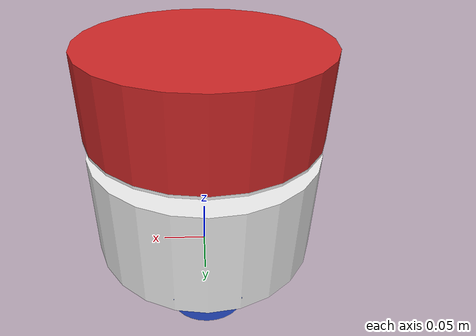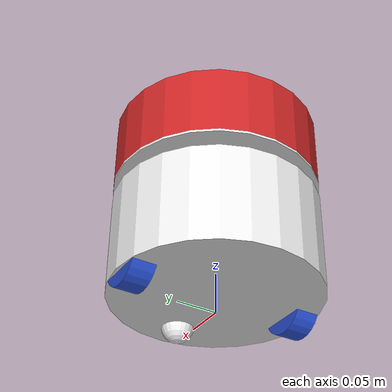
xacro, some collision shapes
<?xml version="1.0" ?>
<robot name="makerspet_fido" xmlns:xacro="http://ros.org/wiki/xacro">
  <xacro:include filename="params.xacro" />
  <xacro:include filename="inertial.xacro" />
  <xacro:include filename="plugins.xacro" />
  <xacro:include filename="materials.xacro" />

  <link name="base_footprint"/>

  <joint name="base_joint" type="fixed">
    <parent link="base_footprint"/>
    <child link="base_link"/>
    <origin xyz="0 0 ${floor_clearance}" rpy="0 0 0"/>
  </joint>

  <link name="base_link">
    <visual>
      <origin xyz="0 0 ${lower_cylinder_height/2}" rpy="0 0 0"/>
      <geometry>
        <cylinder length="${lower_cylinder_height}" radius="${base_diameter/2}"/>
      </geometry>
      <material name="white"/>
    </visual>

    <collision>
      <origin xyz="0 0 ${lower_cylinder_height/2}" rpy="0 0 0"/>
      <geometry>
        <cylinder length="${lower_cylinder_height}" radius="${base_diameter/2}"/>
      </geometry>
    </collision>

    <xacro:solid_cylinder_inertia m="${lower_cylinder_mass}" r="${base_diameter/2}" h="${lower_cylinder_height}"/>
  </link>

  <joint name="caster_joint" type="fixed">
    <parent link="base_link"/>
    <child link="caster_link"/>
    <origin xyz="${base_diameter/2-caster_inset} 0 ${caster_diameter/2-floor_clearance}" rpy="0 0 0"/>
  </joint>

  <link name="caster_link">
    <visual>
      <origin xyz="0 0 0" rpy="0 0 0"/>
      <geometry>
        <sphere radius="${caster_diameter/2}"/>
      </geometry>
      <material name="white"/>
    </visual>

   <collision>
      <origin xyz="0 0 0" rpy="0 0 0"/>
      <geometry>
        <sphere radius="${caster_diameter/2}"/>
      </geometry>
    </collision>

    <xacro:solid_sphere_inertia m="${caster_mass}" r="${caster_diameter/2}"/>
  </link>

  <joint name="wheel_left_joint" type="continuous">
    <parent link="base_link"/>
    <child link="wheel_left_link"/>
    <origin xyz="0 ${wheel_base/2} ${wheel_diameter/2-floor_clearance}" rpy="-${pi/2} 0 0"/>
    <axis xyz="0 0 1"/>
  </joint>

  <link name="wheel_left_link">
    <visual>
      <origin xyz="0 0 0" rpy="0 0 0"/>
      <geometry>
        <cylinder length="${wheel_width}" radius="${wheel_diameter/2}"/>
      </geometry>
      <material name="blue"/>
    </visual>

    <collision>
      <origin xyz="0 0 0" rpy="0 0 0"/>
      <geometry>
        <cylinder length="${wheel_width}" radius="${wheel_diameter/2}"/>
      </geometry>
    </collision>

    <xacro:solid_cylinder_inertia m="${wheel_mass}" r="${wheel_diameter/2}" h="${wheel_width}"/>
  </link>

  <joint name="wheel_right_joint" type="continuous">
    <parent link="base_link"/>
    <child link="wheel_right_link"/>
    <origin xyz="0 ${-wheel_base/2} ${wheel_diameter/2-floor_clearance}" rpy="-${pi/2} 0 0"/>
    <axis xyz="0 0 1"/>
  </joint>

  <link name="wheel_right_link">
    <visual>
      <origin xyz="0 0 0" rpy="0 0 0"/>
      <geometry>
        <cylinder length="${wheel_width}" radius="${wheel_diameter/2}"/>
      </geometry>
      <material name="blue"/>
    </visual>

    <collision>
      <origin xyz="0 0 0" rpy="0 0 0"/>
      <geometry>
        <cylinder length="${wheel_width}" radius="${wheel_diameter/2}"/>
      </geometry>
    </collision>

    <xacro:solid_cylinder_inertia m="${wheel_mass}" r="${wheel_diameter/2}" h="${wheel_width}"/>
  </link>

  <joint name="scan_joint" type="fixed">
    <parent link="base_link"/>
    <child link="base_scan"/>
    <origin xyz="0 0 ${lower_cylinder_height + (lower_to_upper_cylinders_gap - laser_puck_to_upper_cylinder_gap)/2}" rpy="-${pi} 0 0"/>
  </joint>

  <link name="base_scan">
    <visual>
      <origin xyz="0 0 0" rpy="0 0 0"/>
      <geometry>
        <cylinder length="${lower_to_upper_cylinders_gap - laser_puck_to_upper_cylinder_gap}" radius="${laser_puck_diameter/2}"/>
      </geometry>
      <material name="blue"/>
    </visual>

    <collision>
      <origin xyz="0 0 0" rpy="0 0 0"/>
      <geometry>
        <cylinder length="${lower_to_upper_cylinders_gap - laser_puck_to_upper_cylinder_gap}" radius="${laser_puck_diameter/2}"/>
      </geometry>
    </collision>

    <xacro:solid_cylinder_inertia m="${laser_puck_mass}" r="${laser_puck_diameter/2}" h="${lower_to_upper_cylinders_gap - laser_puck_to_upper_cylinder_gap}"/>
  </link>

  <joint name="base_upper_joint" type="fixed">
    <parent link="base_link"/>
    <child link="base_upper_link"/>
    <origin xyz="0 0 ${lower_cylinder_height + lower_to_upper_cylinders_gap}" rpy="0 0 0"/>
  </joint>

  <link name="base_upper_link">
    <visual>
      <origin xyz="0 0 ${upper_cylinder_height/2}" rpy="0 0 0"/>
      <geometry>
        <cylinder length="${upper_cylinder_height}" radius="${base_diameter/2}"/>
      </geometry>
      <material name="white"/>
    </visual>

    <collision>
      <origin xyz="0 0 ${upper_cylinder_height/2}" rpy="0 0 0"/>
      <geometry>
        <cylinder length="${upper_cylinder_height}" radius="${base_diameter/2}"/>
      </geometry>
    </collision>

    <xacro:solid_cylinder_inertia m="${upper_cylinder_mass}" r="${base_diameter/2}" h="${upper_cylinder_height}"/>
  </link>

  <joint name="head_joint" type="fixed">
    <parent link="base_upper_link"/>
    <child link="head_link"/>
    <origin xyz="0 0 ${upper_cylinder_height}" rpy="0 0 0"/>
  </joint>

  <link name="head_link">
    <visual>
      <origin xyz="0 0 0" rpy="0 0 0"/>
      <geometry>
        <mesh filename="package://makerspet_fido/mesh/head.stl" scale="${0.001*base_diameter} ${0.001*base_diameter} ${0.001*head_height*2}"/>
      </geometry>
      <material name="red"/>
    </visual>

    <collision>
      <origin xyz="0 0 ${head_height/2}" rpy="0 0 0"/>
      <geometry>
        <cylinder length="${head_height}" radius="${base_diameter/2}"/>
      </geometry>
    </collision>

    <xacro:solid_semi_ellipsoid_inertia m="${head_mass}" x="${base_diameter/2}" y="${base_diameter/2}" z="${head_height}"/>
  </link>

  <joint name="tablet_joint" type="fixed">
    <parent link="head_link"/>
    <child link="tablet_link"/>
    <origin xyz="${base_diameter/2 - tablet_inset} 0 0" rpy="0 ${-tablet_pitch_angle*DEG2RAD} 0"/>
  </joint>

  <link name="tablet_link">
    <visual>
      <origin xyz="0 0 ${tablet_height/2}" rpy="${pi/2} 0 ${pi/2}"/>
      <geometry>
        <box size="${tablet_width} ${tablet_height} ${tablet_thickness}"/>
      </geometry>
      <material name="dark"/>
    </visual>

   <collision>
      <origin xyz="0 0 ${tablet_height/2}" rpy="${pi/2} 0 ${pi/2}"/>
      <origin xyz="0 0 0.03905" rpy="${pi/2} 0 ${pi/2}"/>
      <geometry>
        <box size="${tablet_width} ${tablet_height} ${tablet_thickness}"/>
      </geometry>
    </collision>

    <xacro:solid_box_inertia m="${tablet_mass}" x="${tablet_width}" y="${tablet_height}" z="${tablet_thickness}"/>
  </link>

  <joint name="color_camera_joint" type="fixed">
    <parent link="tablet_link"/>
    <child link="color_camera_link"/>
    <origin xyz="${tablet_thickness/2-color_camera_thickness} ${color_camera_inset - tablet_width/2} ${tablet_height/2}" rpy="0 0 0"/>
  </joint>

  <link name="color_camera_link">
    <visual>
      <origin xyz="0 0 0" rpy="0 ${pi/2} 0"/>
      <geometry>
        <cylinder length="${color_camera_thickness}" radius="${color_camera_diameter/2}"/>
      </geometry>
      <material name="white"/>
    </visual>
  </link>

  <joint name="imu_joint" type="fixed">
    <parent link="tablet_link"/>
    <child link="imu_link"/>
    <origin xyz="${imu_joint_dx} ${imu_joint_dy} ${imu_joint_dz+tablet_height/2}" rpy="0 0 0"/>
  </joint>

  <link name="imu_link">
    <visual>
      <origin xyz="0 0 0" rpy="0 0 0"/>
      <geometry>
        <box size="${imu_xlen} ${imu_ylen} ${imu_zlen}"/>
      </geometry>
      <material name="black"/>
    </visual>
  </link>

</robot>

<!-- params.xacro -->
<robot xmlns:xacro="http://ros.org/wiki/xacro">
  <!-- ****************** ROBOT DIMENSIONS ****************** -->
  <!-- Units: meters, degrees, kg, N*m, m/s2 -->
  <xacro:property name="wheel_diameter" value="0.067"/>
  <xacro:property name="wheel_width" value="0.029"/>
  <xacro:property name="caster_diameter" value="0.04"/>
  <!-- Caster center to base edge -->
  <xacro:property name="caster_inset" value="0.0386"/>
  <xacro:property name="floor_clearance" value="0.018"/>
  <xacro:property name="base_diameter" value="0.2524"/>
  <xacro:property name="wheel_base" value="0.214322"/>
  <xacro:property name="lower_cylinder_height" value="0.1227"/>
  <xacro:property name="lower_to_upper_cylinders_gap" value="0.0195"/>
  <xacro:property name="laser_puck_to_upper_cylinder_gap" value="0.0022"/>
  <xacro:property name="laser_puck_diameter" value="0.0656"/>
  <xacro:property name="upper_cylinder_height" value="0.003"/>
  <xacro:property name="head_height" value="0.09"/>
  <xacro:property name="tablet_width" value="0.1669"/>
  <xacro:property name="tablet_height" value="0.0781"/>
  <xacro:property name="tablet_thickness" value="0.009"/>
  <!-- Zero - tablet faces straight forward -->
  <xacro:property name="tablet_pitch_angle" value="20"/>
  <!-- Upper cylinder's front to tablet bottom's center -->
  <xacro:property name="tablet_inset" value="0.07"/>
  <xacro:property name="color_camera_diameter" value="0.004"/>
  <!-- Tablet edge to camera center -->
  <xacro:property name="color_camera_inset" value="0.008"/>
  <!-- Delta xyz from tablet center -->
  <xacro:property name="imu_joint_dx" value="0"/>
  <xacro:property name="imu_joint_dy" value="0"/>
  <xacro:property name="imu_joint_dz" value="0"/>
  <!-- imu_joint_rpy: [0.0, 0.0, 0.0] -->

  <xacro:property name="motor_stall_torque" value="0.49"/>
  <xacro:property name="max_linear_acceleration" value="5"/>
  <xacro:property name="lower_cylinder_mass" value="0.500"/>
  <!-- caster and battery weight -->
  <xacro:property name="caster_mass" value="0.120"/>
  <xacro:property name="wheel_mass" value="0.050"/>
  <xacro:property name="laser_puck_mass" value="0.200"/>
  <xacro:property name="upper_cylinder_mass" value="0.100"/>
  <xacro:property name="head_mass" value="0.200"/>
  <xacro:property name="tablet_mass" value="0.200"/>

  <xacro:property name="DEG2RAD" value="0.0174533"/>
  <xacro:property name="color_camera_thickness" value="0.0001"/>
  <xacro:property name="imu_xlen" value="0.001"/>
  <xacro:property name="imu_ylen" value="0.002"/>
  <xacro:property name="imu_zlen" value="0.004"/>
</robot>
